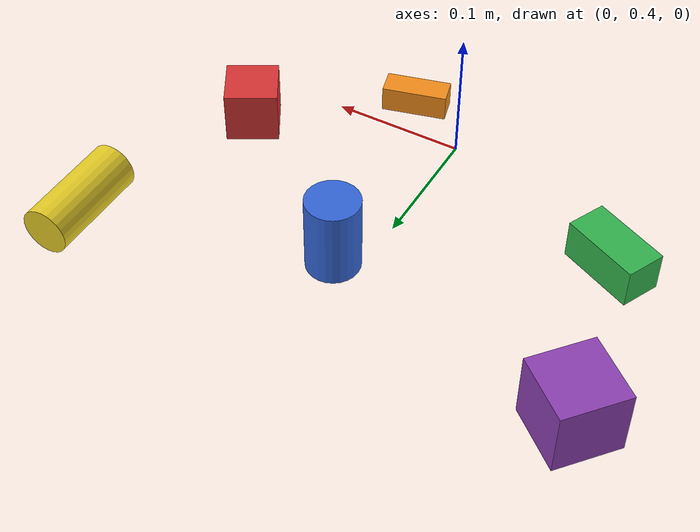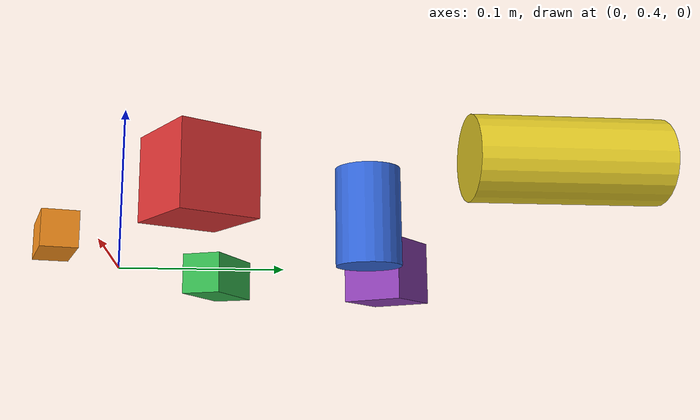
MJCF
<mujoco model="pick objects">
  <worldbody>
    <!-- 4 cm cube, rotated 30 deg about z -->
    <body name="cube_red" pos="0.15 0.45 0.020" quat="0.966 0 0 0.259">
      <freejoint/>
      <geom type="box" size="0.020 0.020 0.020" rgba="0.85 0.20 0.20 1"/>
    </body>

    <!-- 6x3x3 cm cuboid, rotated -25 deg about z -->
    <body name="cuboid_green" pos="-0.15 0.46 0.015" quat="0.976 0 0 -0.216">
      <freejoint/>
      <geom type="box" size="0.030 0.015 0.015" rgba="0.20 0.70 0.30 1"/>
    </body>

    <!-- upright cylinder, r=2 cm, h=6 cm -->
    <body name="cylinder_blue" pos="0.02 0.55 0.030">
      <freejoint/>
      <geom type="cylinder" size="0.020 0.030" rgba="0.20 0.40 0.85 1"/>
    </body>

    <!-- cylinder lying on its side, r=1.8 cm, h=8 cm (axis horizontal, 90 deg about x) -->
    <body name="cylinder_yellow" pos="0.20 0.60 0.018" quat="0.707 0.707 0 0">
      <freejoint/>
      <geom type="cylinder" size="0.018 0.040" rgba="0.90 0.80 0.15 1"/>
    </body>

    <!-- 5 cm cube, rotated 50 deg about z -->
    <body name="cube_purple" pos="-0.18 0.60 0.025" quat="0.906 0 0 0.423">
      <freejoint/>
      <geom type="box" size="0.025 0.025 0.025" rgba="0.55 0.25 0.70 1"/>
    </body>

    <!-- 5x2x2 cm bar, rotated 15 deg about z -->
    <body name="cuboid_orange" pos="0.05 0.37 0.010" quat="0.991 0 0 0.131">
      <freejoint/>
      <geom type="box" size="0.025 0.010 0.010" rgba="0.95 0.55 0.10 1"/>
    </body>
  </worldbody>

  <!-- Full-state keyframe (56 qpos): arm home + gripper open + the 6 object poses above.
       Reset to "start" in either scene. Object qpos order follows the body order above. -->
  <keyframe>
    <key name="start"
      qpos="-1.5708 -1.5708 1.5708 -1.5708 -1.5708 0 0 0 0 0 0 0 0 0
            0.15 0.45 0.020 0.966 0 0 0.259
            -0.15 0.46 0.015 0.976 0 0 -0.216
            0.02 0.55 0.030 1 0 0 0
            0.20 0.60 0.018 0.707 0.707 0 0
            -0.18 0.60 0.025 0.906 0 0 0.423
            0.05 0.37 0.010 0.991 0 0 0.131"
      ctrl="-1.5708 -1.5708 1.5708 -1.5708 -1.5708 0 0"/>
  </keyframe>
</mujoco>
